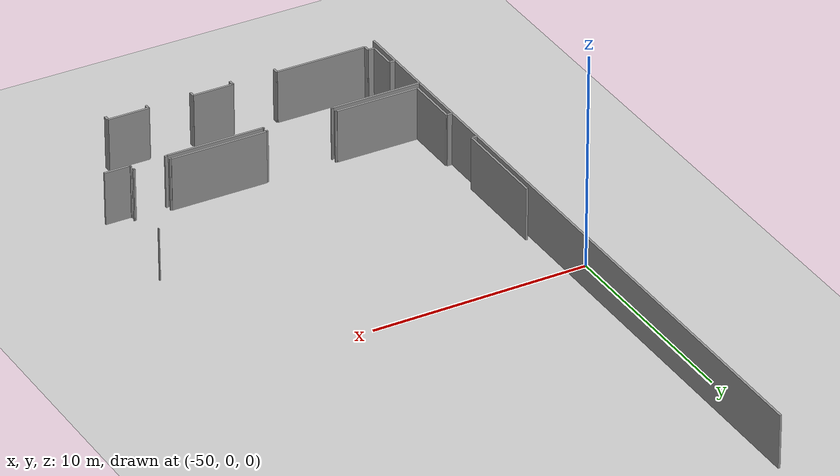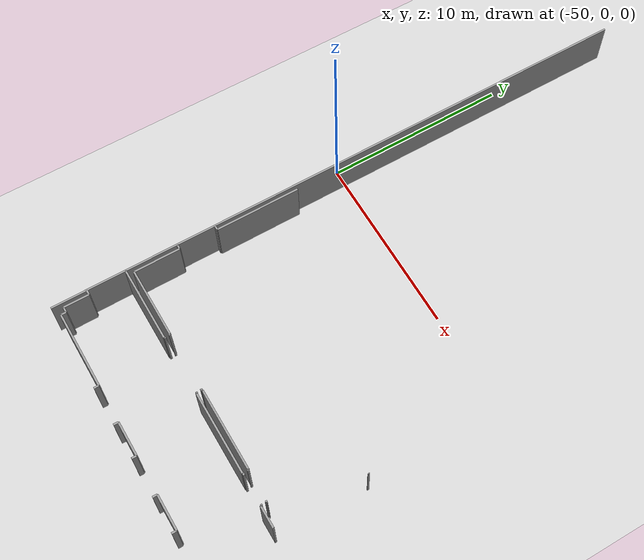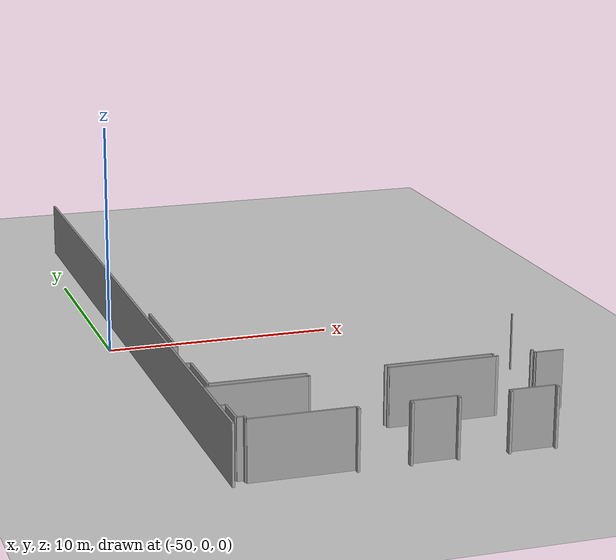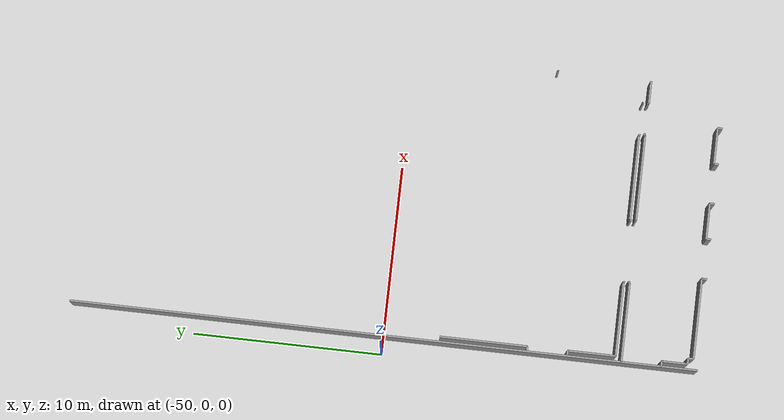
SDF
<sdf version="1.6">
 <world name="default">
  <model name="ground_plane">
   <static>1</static>
   <link name="link">
    <collision name="collision">
     <geometry><plane><normal>0 0 1</normal><size>100 100</size></plane></geometry>
     <surface><friction><ode><mu>100</mu><mu2>50</mu2></ode></friction></surface>
    </collision>
    <visual name="visual">
     <cast_shadows>0</cast_shadows>
     <geometry><plane><normal>0 0 1</normal><size>100 100</size></plane></geometry>
     <material>
      <script><uri>file://media/materials/scripts/gazebo.material</uri><name>Gazebo/Grey</name></script>
     </material>
    </visual>
   </link>
  </model>
  <model name="0510032261_A_40_1_103">
   <static>1</static>
   <link name="Wall_0">
    <collision name="Wall_0_Collision">
     <geometry><box><size>2.5165184244 0.1 2.5</size></box></geometry>
     <pose>1.2582592122 0 1.25 0 0 0</pose>
    </collision>
    <visual name="Wall_0_Visual">
     <pose>1.2582592122 0 1.25 0 0 0</pose>
     <geometry><box><size>2.5165184244 0.1 2.5</size></box></geometry>
     <material>
      <script><uri>file://media/materials/scripts/gazebo.material</uri><name>Gazebo/Grey</name></script>
      <ambient>1 1 1 1</ambient>
     </material>
    </visual>
    <pose>0.275984752224 -28.7393900889 0 0 0 1.57079632679</pose>
   </link>
   <link name="Wall_1">
    <collision name="Wall_1_Collision">
     <geometry><box><size>0.257560355781 0.1 2.5</size></box></geometry>
     <pose>0.128780177891 0 1.25 0 0 0</pose>
    </collision>
    <visual name="Wall_1_Visual">
     <pose>0.128780177891 0 1.25 0 0 0</pose>
     <geometry><box><size>0.257560355781 0.1 2.5</size></box></geometry>
     <material>
      <script><uri>file://media/materials/scripts/gazebo.material</uri><name>Gazebo/Grey</name></script>
      <ambient>1 1 1 1</ambient>
     </material>
    </visual>
    <pose>0.275984752224 -26.2228716645 0 0 0 3.14159265359</pose>
   </link>
   <link name="Wall_2">
    <collision name="Wall_2_Collision">
     <geometry><box><size>0.247268106734 0.1 2.5</size></box></geometry>
     <pose>0.123634053367 0 1.25 0 0 0</pose>
    </collision>
    <visual name="Wall_2_Visual">
     <pose>0.123634053367 0 1.25 0 0 0</pose>
     <geometry><box><size>0.247268106734 0.1 2.5</size></box></geometry>
     <material>
      <script><uri>file://media/materials/scripts/gazebo.material</uri><name>Gazebo/Grey</name></script>
      <ambient>1 1 1 1</ambient>
     </material>
    </visual>
    <pose>0.0184243964422 -24.1005082592 0 0 0 0.0</pose>
   </link>
   <link name="Wall_3">
    <collision name="Wall_3_Collision">
     <geometry><box><size>4.61766200762 0.1 2.5</size></box></geometry>
     <pose>2.30883100381 0 1.25 0 0 0</pose>
    </collision>
    <visual name="Wall_3_Visual">
     <pose>2.30883100381 0 1.25 0 0 0</pose>
     <geometry><box><size>4.61766200762 0.1 2.5</size></box></geometry>
     <material>
      <script><uri>file://media/materials/scripts/gazebo.material</uri><name>Gazebo/Grey</name></script>
      <ambient>1 1 1 1</ambient>
     </material>
    </visual>
    <pose>0.265692503177 -24.1005082592 0 0 0 1.57079632679</pose>
   </link>
   <link name="Wall_22">
    <collision name="Wall_22_Collision">
     <geometry><box><size>0.0388818297332 0.1 2.5</size></box></geometry>
     <pose>0.0194409148666 0 1.25 0 0 0</pose>
    </collision>
    <visual name="Wall_22_Visual">
     <pose>0.0194409148666 0 1.25 0 0 0</pose>
     <geometry><box><size>0.0388818297332 0.1 2.5</size></box></geometry>
     <material>
      <script><uri>file://media/materials/scripts/gazebo.material</uri><name>Gazebo/Grey</name></script>
      <ambient>1 1 1 1</ambient>
     </material>
    </visual>
    <pose>14.91613723 -24.1386277001 0 0 0 0.0</pose>
   </link>
   <link name="Wall_28">
    <collision name="Wall_28_Collision">
     <geometry><box><size>0.0199491740788 0.1 2.5</size></box></geometry>
     <pose>0.00997458703939 0 1.25 0 0 0</pose>
    </collision>
    <visual name="Wall_28_Visual">
     <pose>0.00997458703939 0 1.25 0 0 0</pose>
     <geometry><box><size>0.0199491740788 0.1 2.5</size></box></geometry>
     <material>
      <script><uri>file://media/materials/scripts/gazebo.material</uri><name>Gazebo/Grey</name></script>
      <ambient>1 1 1 1</ambient>
     </material>
    </visual>
    <pose>13.741296061 -28.7420584498 0 0 0 -1.57079632679</pose>
   </link>
   <link name="Wall_29">
    <collision name="Wall_29_Collision">
     <geometry><box><size>0.0866581956798 0.1 2.5</size></box></geometry>
     <pose>0.0433290978399 0 1.25 0 0 0</pose>
    </collision>
    <visual name="Wall_29_Visual">
     <pose>0.0433290978399 0 1.25 0 0 0</pose>
     <geometry><box><size>0.0866581956798 0.1 2.5</size></box></geometry>
     <material>
      <script><uri>file://media/materials/scripts/gazebo.material</uri><name>Gazebo/Grey</name></script>
      <ambient>1 1 1 1</ambient>
     </material>
    </visual>
    <pose>13.741296061 -28.7620076239 0 0 0 3.14159265359</pose>
   </link>
   <link name="Wall_30">
    <collision name="Wall_30_Collision">
     <geometry><box><size>0.0725540025413 0.1 2.5</size></box></geometry>
     <pose>0.0362770012706 0 1.25 0 0 0</pose>
    </collision>
    <visual name="Wall_30_Visual">
     <pose>0.0362770012706 0 1.25 0 0 0</pose>
     <geometry><box><size>0.0725540025413 0.1 2.5</size></box></geometry>
     <material>
      <script><uri>file://media/materials/scripts/gazebo.material</uri><name>Gazebo/Grey</name></script>
      <ambient>1 1 1 1</ambient>
     </material>
    </visual>
    <pose>12.0565438374 -28.7620076239 0 0 0 3.14159265359</pose>
   </link>
   <link name="Wall_31">
    <collision name="Wall_31_Collision">
     <geometry><box><size>0.025667090216 0.1 2.5</size></box></geometry>
     <pose>0.012833545108 0 1.25 0 0 0</pose>
    </collision>
    <visual name="Wall_31_Visual">
     <pose>0.012833545108 0 1.25 0 0 0</pose>
     <geometry><box><size>0.025667090216 0.1 2.5</size></box></geometry>
     <material>
      <script><uri>file://media/materials/scripts/gazebo.material</uri><name>Gazebo/Grey</name></script>
      <ambient>1 1 1 1</ambient>
     </material>
    </visual>
    <pose>11.9839898348 -28.7620076239 0 0 0 1.57079632679</pose>
   </link>
   <link name="Wall_32">
    <collision name="Wall_32_Collision">
     <geometry><box><size>4.47001270648 0.1 2.5</size></box></geometry>
     <pose>2.23500635324 0 1.25 0 0 0</pose>
    </collision>
    <visual name="Wall_32_Visual">
     <pose>2.23500635324 0 1.25 0 0 0</pose>
     <geometry><box><size>4.47001270648 0.1 2.5</size></box></geometry>
     <material>
      <script><uri>file://media/materials/scripts/gazebo.material</uri><name>Gazebo/Grey</name></script>
      <ambient>1 1 1 1</ambient>
     </material>
    </visual>
    <pose>11.9839898348 -28.7363405337 0 0 0 3.14159265359</pose>
   </link>
   <link name="Wall_33">
    <collision name="Wall_33_Collision">
     <geometry><box><size>0.0294790343075 0.1 2.5</size></box></geometry>
     <pose>0.0147395171537 0 1.25 0 0 0</pose>
    </collision>
    <visual name="Wall_33_Visual">
     <pose>0.0147395171537 0 1.25 0 0 0</pose>
     <geometry><box><size>0.0294790343075 0.1 2.5</size></box></geometry>
     <material>
      <script><uri>file://media/materials/scripts/gazebo.material</uri><name>Gazebo/Grey</name></script>
      <ambient>1 1 1 1</ambient>
     </material>
    </visual>
    <pose>7.51397712834 -28.7363405337 0 0 0 -1.57079632679</pose>
   </link>
   <link name="Wall_34">
    <collision name="Wall_34_Collision">
     <geometry><box><size>0.0997458703939 0.1 2.5</size></box></geometry>
     <pose>0.049872935197 0 1.25 0 0 0</pose>
    </collision>
    <visual name="Wall_34_Visual">
     <pose>0.049872935197 0 1.25 0 0 0</pose>
     <geometry><box><size>0.0997458703939 0.1 2.5</size></box></geometry>
     <material>
      <script><uri>file://media/materials/scripts/gazebo.material</uri><name>Gazebo/Grey</name></script>
      <ambient>1 1 1 1</ambient>
     </material>
    </visual>
    <pose>7.51397712834 -28.765819568 0 0 0 3.14159265359</pose>
   </link>
   <link name="Wall_35">
    <collision name="Wall_35_Collision">
     <geometry><box><size>0.0818297331639 0.1 2.5</size></box></geometry>
     <pose>0.040914866582 0 1.25 0 0 0</pose>
    </collision>
    <visual name="Wall_35_Visual">
     <pose>0.040914866582 0 1.25 0 0 0</pose>
     <geometry><box><size>0.0818297331639 0.1 2.5</size></box></geometry>
     <material>
      <script><uri>file://media/materials/scripts/gazebo.material</uri><name>Gazebo/Grey</name></script>
      <ambient>1 1 1 1</ambient>
     </material>
    </visual>
    <pose>4.23799237611 -28.765819568 0 0 0 3.14159265359</pose>
   </link>
   <link name="Wall_36">
    <collision name="Wall_36_Collision">
     <geometry><box><size>0.0247776365947 0.1 2.5</size></box></geometry>
     <pose>0.0123888182973 0 1.25 0 0 0</pose>
    </collision>
    <visual name="Wall_36_Visual">
     <pose>0.0123888182973 0 1.25 0 0 0</pose>
     <geometry><box><size>0.0247776365947 0.1 2.5</size></box></geometry>
     <material>
      <script><uri>file://media/materials/scripts/gazebo.material</uri><name>Gazebo/Grey</name></script>
      <ambient>1 1 1 1</ambient>
     </material>
    </visual>
    <pose>4.15616264295 -28.765819568 0 0 0 1.57079632679</pose>
   </link>
   <link name="Wall_37">
    <collision name="Wall_37_Collision">
     <geometry><box><size>3.88017824233 0.1 2.5</size></box></geometry>
     <pose>1.94008912116 0 1.25 0 0 0</pose>
    </collision>
    <visual name="Wall_37_Visual">
     <pose>1.94008912116 0 1.25 0 0 0</pose>
     <geometry><box><size>3.88017824233 0.1 2.5</size></box></geometry>
     <material>
      <script><uri>file://media/materials/scripts/gazebo.material</uri><name>Gazebo/Grey</name></script>
      <ambient>1 1 1 1</ambient>
     </material>
    </visual>
    <pose>4.15616264295 -28.7410419314 0 0 0 3.14116694055</pose>
   </link>
   <link name="Wall_38">
    <collision name="Wall_38_Collision">
     <geometry><box><size>1.35628970775 0.1 2.5</size></box></geometry>
     <pose>0.678144853875 0 1.25 0 0 0</pose>
    </collision>
    <visual name="Wall_38_Visual">
     <pose>0.678144853875 0 1.25 0 0 0</pose>
     <geometry><box><size>1.35628970775 0.1 2.5</size></box></geometry>
     <material>
      <script><uri>file://media/materials/scripts/gazebo.material</uri><name>Gazebo/Grey</name></script>
      <ambient>1 1 1 1</ambient>
     </material>
    </visual>
    <pose>0.274968233799 -32.5261753494 0 0 0 1.57079632679</pose>
   </link>
   <link name="Wall_39">
    <collision name="Wall_39_Collision">
     <geometry><box><size>0.274968233799 0.1 2.5</size></box></geometry>
     <pose>0.1374841169 0 1.25 0 0 0</pose>
    </collision>
    <visual name="Wall_39_Visual">
     <pose>0.1374841169 0 1.25 0 0 0</pose>
     <geometry><box><size>0.274968233799 0.1 2.5</size></box></geometry>
     <material>
      <script><uri>file://media/materials/scripts/gazebo.material</uri><name>Gazebo/Grey</name></script>
      <ambient>1 1 1 1</ambient>
     </material>
    </visual>
    <pose>0.274968233799 -31.1698856417 0 0 0 3.14159265359</pose>
   </link>
   <link name="Wall_40">
    <collision name="Wall_40_Collision">
     <geometry><box><size>4.17522236341 0.1 2.5</size></box></geometry>
     <pose>2.0876111817 0 1.25 0 0 0</pose>
    </collision>
    <visual name="Wall_40_Visual">
     <pose>2.0876111817 0 1.25 0 0 0</pose>
     <geometry><box><size>4.17522236341 0.1 2.5</size></box></geometry>
     <material>
      <script><uri>file://media/materials/scripts/gazebo.material</uri><name>Gazebo/Grey</name></script>
      <ambient>1 1 1 1</ambient>
     </material>
    </visual>
    <pose>0.0 -29.0681067344 0 0 0 0.0</pose>
   </link>
   <link name="Wall_41">
    <collision name="Wall_41_Collision">
     <geometry><box><size>0.0348157560356 0.1 2.5</size></box></geometry>
     <pose>0.0174078780178 0 1.25 0 0 0</pose>
    </collision>
    <visual name="Wall_41_Visual">
     <pose>0.0174078780178 0 1.25 0 0 0</pose>
     <geometry><box><size>0.0348157560356 0.1 2.5</size></box></geometry>
     <material>
      <script><uri>file://media/materials/scripts/gazebo.material</uri><name>Gazebo/Grey</name></script>
      <ambient>1 1 1 1</ambient>
     </material>
    </visual>
    <pose>4.17522236341 -29.0681067344 0 0 0 1.57079632679</pose>
   </link>
   <link name="Wall_42">
    <collision name="Wall_42_Collision">
     <geometry><box><size>0.0900889453621 0.1 2.5</size></box></geometry>
     <pose>0.0450444726811 0 1.25 0 0 0</pose>
    </collision>
    <visual name="Wall_42_Visual">
     <pose>0.0450444726811 0 1.25 0 0 0</pose>
     <geometry><box><size>0.0900889453621 0.1 2.5</size></box></geometry>
     <material>
      <script><uri>file://media/materials/scripts/gazebo.material</uri><name>Gazebo/Grey</name></script>
      <ambient>1 1 1 1</ambient>
     </material>
    </visual>
    <pose>4.17522236341 -29.0332909784 0 0 0 0.0</pose>
   </link>
   <link name="Wall_43">
    <collision name="Wall_43_Collision">
     <geometry><box><size>0.0623888182973 0.1 2.5</size></box></geometry>
     <pose>0.0311944091487 0 1.25 0 0 0</pose>
    </collision>
    <visual name="Wall_43_Visual">
     <pose>0.0311944091487 0 1.25 0 0 0</pose>
     <geometry><box><size>0.0623888182973 0.1 2.5</size></box></geometry>
     <material>
      <script><uri>file://media/materials/scripts/gazebo.material</uri><name>Gazebo/Grey</name></script>
      <ambient>1 1 1 1</ambient>
     </material>
    </visual>
    <pose>7.44345616264 -29.0332909784 0 0 0 0.0</pose>
   </link>
   <link name="Wall_44">
    <collision name="Wall_44_Collision">
     <geometry><box><size>0.0223634053367 0.1 2.5</size></box></geometry>
     <pose>0.0111817026684 0 1.25 0 0 0</pose>
    </collision>
    <visual name="Wall_44_Visual">
     <pose>0.0111817026684 0 1.25 0 0 0</pose>
     <geometry><box><size>0.0223634053367 0.1 2.5</size></box></geometry>
     <material>
      <script><uri>file://media/materials/scripts/gazebo.material</uri><name>Gazebo/Grey</name></script>
      <ambient>1 1 1 1</ambient>
     </material>
    </visual>
    <pose>7.50584498094 -29.0332909784 0 0 0 -1.57079632679</pose>
   </link>
   <link name="Wall_45">
    <collision name="Wall_45_Collision">
     <geometry><box><size>4.49695044473 0.1 2.5</size></box></geometry>
     <pose>2.24847522236 0 1.25 0 0 0</pose>
    </collision>
    <visual name="Wall_45_Visual">
     <pose>2.24847522236 0 1.25 0 0 0</pose>
     <geometry><box><size>4.49695044473 0.1 2.5</size></box></geometry>
     <material>
      <script><uri>file://media/materials/scripts/gazebo.material</uri><name>Gazebo/Grey</name></script>
      <ambient>1 1 1 1</ambient>
     </material>
    </visual>
    <pose>7.50584498094 -29.0556543837 0 0 0 0.0</pose>
   </link>
   <link name="Wall_46">
    <collision name="Wall_46_Collision">
     <geometry><box><size>0.0223634053367 0.1 2.5</size></box></geometry>
     <pose>0.0111817026684 0 1.25 0 0 0</pose>
    </collision>
    <visual name="Wall_46_Visual">
     <pose>0.0111817026684 0 1.25 0 0 0</pose>
     <geometry><box><size>0.0223634053367 0.1 2.5</size></box></geometry>
     <material>
      <script><uri>file://media/materials/scripts/gazebo.material</uri><name>Gazebo/Grey</name></script>
      <ambient>1 1 1 1</ambient>
     </material>
    </visual>
    <pose>12.0027954257 -29.0556543837 0 0 0 1.57079632679</pose>
   </link>
   <link name="Wall_47">
    <collision name="Wall_47_Collision">
     <geometry><box><size>0.125667090216 0.1 2.5</size></box></geometry>
     <pose>0.062833545108 0 1.25 0 0 0</pose>
    </collision>
    <visual name="Wall_47_Visual">
     <pose>0.062833545108 0 1.25 0 0 0</pose>
     <geometry><box><size>0.125667090216 0.1 2.5</size></box></geometry>
     <material>
      <script><uri>file://media/materials/scripts/gazebo.material</uri><name>Gazebo/Grey</name></script>
      <ambient>1 1 1 1</ambient>
     </material>
    </visual>
    <pose>12.0027954257 -29.0332909784 0 0 0 0.0</pose>
   </link>
   <link name="Wall_48">
    <collision name="Wall_48_Collision">
     <geometry><box><size>0.0631512071156 0.1 2.5</size></box></geometry>
     <pose>0.0315756035578 0 1.25 0 0 0</pose>
    </collision>
    <visual name="Wall_48_Visual">
     <pose>0.0315756035578 0 1.25 0 0 0</pose>
     <geometry><box><size>0.0631512071156 0.1 2.5</size></box></geometry>
     <material>
      <script><uri>file://media/materials/scripts/gazebo.material</uri><name>Gazebo/Grey</name></script>
      <ambient>1 1 1 1</ambient>
     </material>
    </visual>
    <pose>13.6867852605 -29.0332909784 0 0 0 0.0</pose>
   </link>
   <link name="Wall_49">
    <collision name="Wall_49_Collision">
     <geometry><box><size>0.043583227446 0.1 2.5</size></box></geometry>
     <pose>0.021791613723 0 1.25 0 0 0</pose>
    </collision>
    <visual name="Wall_49_Visual">
     <pose>0.021791613723 0 1.25 0 0 0</pose>
     <geometry><box><size>0.043583227446 0.1 2.5</size></box></geometry>
     <material>
      <script><uri>file://media/materials/scripts/gazebo.material</uri><name>Gazebo/Grey</name></script>
      <ambient>1 1 1 1</ambient>
     </material>
    </visual>
    <pose>13.7499364676 -29.0332909784 0 0 0 -1.57079632679</pose>
   </link>
   <link name="Wall_50">
    <collision name="Wall_50_Collision">
     <geometry><box><size>1.1750952986 0.1 2.5</size></box></geometry>
     <pose>0.587547649301 0 1.25 0 0 0</pose>
    </collision>
    <visual name="Wall_50_Visual">
     <pose>0.587547649301 0 1.25 0 0 0</pose>
     <geometry><box><size>1.1750952986 0.1 2.5</size></box></geometry>
     <material>
      <script><uri>file://media/materials/scripts/gazebo.material</uri><name>Gazebo/Grey</name></script>
      <ambient>1 1 1 1</ambient>
     </material>
    </visual>
    <pose>13.7499364676 -29.0768742058 0 0 0 0.0</pose>
   </link>
   <link name="Wall_52">
    <collision name="Wall_52_Collision">
     <geometry><box><size>0.258068614994 0.1 2.5</size></box></geometry>
     <pose>0.129034307497 0 1.25 0 0 0</pose>
    </collision>
    <visual name="Wall_52_Visual">
     <pose>0.129034307497 0 1.25 0 0 0</pose>
     <geometry><box><size>0.258068614994 0.1 2.5</size></box></geometry>
     <material>
      <script><uri>file://media/materials/scripts/gazebo.material</uri><name>Gazebo/Grey</name></script>
      <ambient>1 1 1 1</ambient>
     </material>
    </visual>
    <pose>12.8343074968 -33.076747141 0 0 0 1.57079632679</pose>
   </link>
   <link name="Wall_53">
    <collision name="Wall_53_Collision">
     <geometry><box><size>1.90991105464 0.1 2.5</size></box></geometry>
     <pose>0.954955527319 0 1.25 0 0 0</pose>
    </collision>
    <visual name="Wall_53_Visual">
     <pose>0.954955527319 0 1.25 0 0 0</pose>
     <geometry><box><size>1.90991105464 0.1 2.5</size></box></geometry>
     <material>
      <script><uri>file://media/materials/scripts/gazebo.material</uri><name>Gazebo/Grey</name></script>
      <ambient>1 1 1 1</ambient>
     </material>
    </visual>
    <pose>12.8343074968 -32.818678526 0 0 0 3.14159265359</pose>
   </link>
   <link name="Wall_54">
    <collision name="Wall_54_Collision">
     <geometry><box><size>0.249555273189 0.1 2.5</size></box></geometry>
     <pose>0.124777636595 0 1.25 0 0 0</pose>
    </collision>
    <visual name="Wall_54_Visual">
     <pose>0.124777636595 0 1.25 0 0 0</pose>
     <geometry><box><size>0.249555273189 0.1 2.5</size></box></geometry>
     <material>
      <script><uri>file://media/materials/scripts/gazebo.material</uri><name>Gazebo/Grey</name></script>
      <ambient>1 1 1 1</ambient>
     </material>
    </visual>
    <pose>10.9243964422 -32.818678526 0 0 0 -1.57079632679</pose>
   </link>
   <link name="Wall_55">
    <collision name="Wall_55_Collision">
     <geometry><box><size>0.253621346887 0.1 2.5</size></box></geometry>
     <pose>0.126810673443 0 1.25 0 0 0</pose>
    </collision>
    <visual name="Wall_55_Visual">
     <pose>0.126810673443 0 1.25 0 0 0</pose>
     <geometry><box><size>0.253621346887 0.1 2.5</size></box></geometry>
     <material>
      <script><uri>file://media/materials/scripts/gazebo.material</uri><name>Gazebo/Grey</name></script>
      <ambient>1 1 1 1</ambient>
     </material>
    </visual>
    <pose>8.81817026684 -33.0682337992 0 0 0 1.57079632679</pose>
   </link>
   <link name="Wall_56">
    <collision name="Wall_56_Collision">
     <geometry><box><size>1.89072426938 0.1 2.5</size></box></geometry>
     <pose>0.945362134689 0 1.25 0 0 0</pose>
    </collision>
    <visual name="Wall_56_Visual">
     <pose>0.945362134689 0 1.25 0 0 0</pose>
     <geometry><box><size>1.89072426938 0.1 2.5</size></box></geometry>
     <material>
      <script><uri>file://media/materials/scripts/gazebo.material</uri><name>Gazebo/Grey</name></script>
      <ambient>1 1 1 1</ambient>
     </material>
    </visual>
    <pose>8.81817026684 -32.8146124524 0 0 0 3.14159265359</pose>
   </link>
   <link name="Wall_57">
    <collision name="Wall_57_Collision">
     <geometry><box><size>0.2625158831 0.1 2.5</size></box></geometry>
     <pose>0.13125794155 0 1.25 0 0 0</pose>
    </collision>
    <visual name="Wall_57_Visual">
     <pose>0.13125794155 0 1.25 0 0 0</pose>
     <geometry><box><size>0.2625158831 0.1 2.5</size></box></geometry>
     <material>
      <script><uri>file://media/materials/scripts/gazebo.material</uri><name>Gazebo/Grey</name></script>
      <ambient>1 1 1 1</ambient>
     </material>
    </visual>
    <pose>6.92744599746 -32.8146124524 0 0 0 -1.57079632679</pose>
   </link>
   <link name="Wall_58">
    <collision name="Wall_58_Collision">
     <geometry><box><size>0.269123252859 0.1 2.5</size></box></geometry>
     <pose>0.134561626429 0 1.25 0 0 0</pose>
    </collision>
    <visual name="Wall_58_Visual">
     <pose>0.134561626429 0 1.25 0 0 0</pose>
     <geometry><box><size>0.269123252859 0.1 2.5</size></box></geometry>
     <material>
      <script><uri>file://media/materials/scripts/gazebo.material</uri><name>Gazebo/Grey</name></script>
      <ambient>1 1 1 1</ambient>
     </material>
    </visual>
    <pose>4.82350698856 -33.0771283355 0 0 0 1.57079632679</pose>
   </link>
   <link name="Wall_59">
    <collision name="Wall_59_Collision">
     <geometry><box><size>4.24777636595 0.1 2.5</size></box></geometry>
     <pose>2.12388818297 0 1.25 0 0 0</pose>
    </collision>
    <visual name="Wall_59_Visual">
     <pose>2.12388818297 0 1.25 0 0 0</pose>
     <geometry><box><size>4.24777636595 0.1 2.5</size></box></geometry>
     <material>
      <script><uri>file://media/materials/scripts/gazebo.material</uri><name>Gazebo/Grey</name></script>
      <ambient>1 1 1 1</ambient>
     </material>
    </visual>
    <pose>4.82350698856 -32.8080050826 0 0 0 3.14159265359</pose>
   </link>
   <link name="Wall_60">
    <collision name="Wall_60_Collision">
     <geometry><box><size>0.278780177891 0.1 2.5</size></box></geometry>
     <pose>0.139390088945 0 1.25 0 0 0</pose>
    </collision>
    <visual name="Wall_60_Visual">
     <pose>0.139390088945 0 1.25 0 0 0</pose>
     <geometry><box><size>0.278780177891 0.1 2.5</size></box></geometry>
     <material>
      <script><uri>file://media/materials/scripts/gazebo.material</uri><name>Gazebo/Grey</name></script>
      <ambient>1 1 1 1</ambient>
     </material>
    </visual>
    <pose>0.575730622618 -32.8080050826 0 0 0 1.57079632679</pose>
   </link>
   <link name="Wall_61">
    <collision name="Wall_61_Collision">
     <geometry><box><size>0.300777848777 0.1 2.5</size></box></geometry>
     <pose>0.150388924389 0 1.25 0 0 0</pose>
    </collision>
    <visual name="Wall_61_Visual">
     <pose>0.150388924389 0 1.25 0 0 0</pose>
     <geometry><box><size>0.300777848777 0.1 2.5</size></box></geometry>
     <material>
      <script><uri>file://media/materials/scripts/gazebo.material</uri><name>Gazebo/Grey</name></script>
      <ambient>1 1 1 1</ambient>
     </material>
    </visual>
    <pose>0.575730622618 -32.5292249047 0 0 0 3.13145358406</pose>
   </link>
   <link name="Wall_687">
    <collision name="Wall_687_Collision">
     <geometry><box><size>33.0814485388 0.1 2.5</size></box></geometry>
     <pose>16.5407242694 0 1.25 0 0 0</pose>
    </collision>
    <visual name="Wall_687_Visual">
     <pose>16.5407242694 0 1.25 0 0 0</pose>
     <geometry><box><size>33.0814485388 0.1 2.5</size></box></geometry>
     <material>
      <script><uri>file://media/materials/scripts/gazebo.material</uri><name>Gazebo/Grey</name></script>
      <ambient>1 1 1 1</ambient>
     </material>
    </visual>
    <pose>0.0 -33.0814485388 0 0 0 1.57079632679</pose>
   </link>
   <pose>-49.15 16.5314485388 0 0 0 0</pose>
  </model>
 </world>
</sdf>
